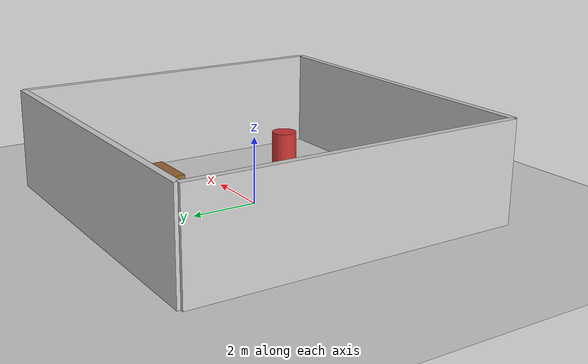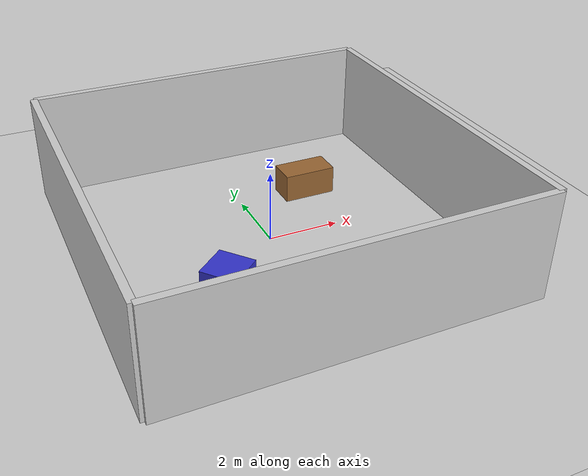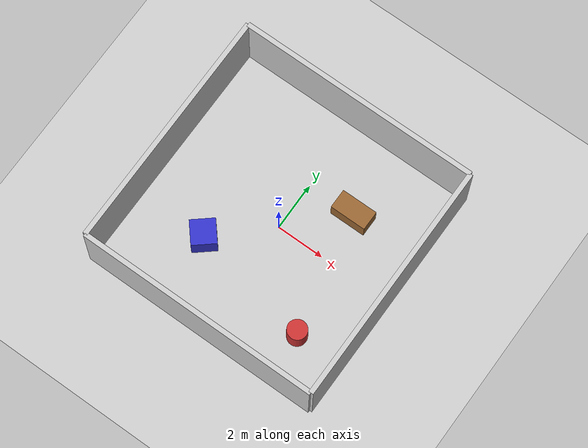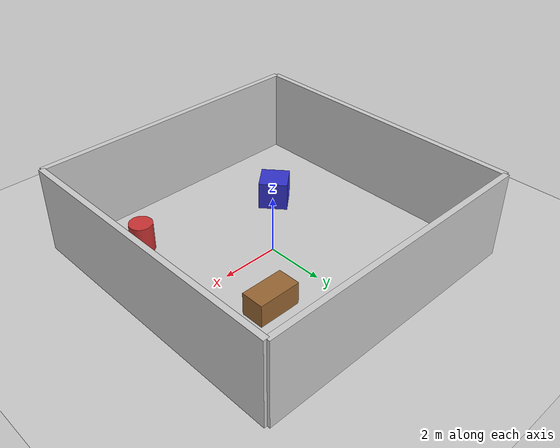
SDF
<?xml version="1.0" ?>
<sdf version="1.6">
  <world name="default">
    <include>
      <uri>model://sun</uri>
    </include>
    <include>
      <uri>model://ground_plane</uri>
    </include>

    <!-- Room walls -->
    <!-- Front wall -->
    <model name="wall_front">
      <static>true</static>
      <pose>5 0 1.5 0 0 0</pose>
      <link name="link">
        <collision name="collision">
          <geometry>
            <box>
              <size>0.2 10 3</size>
            </box>
          </geometry>
        </collision>
        <visual name="visual">
          <geometry>
            <box>
              <size>0.2 10 3</size>
            </box>
          </geometry>
          <material>
      <ambient>0.8 0.8 0.8 1</ambient>
            <diffuse>0.8 0.8 0.8 1</diffuse>
          </material>
        </visual>
      </link>
    </model>

    <!-- Back wall -->
    <model name="wall_back">
      <static>true</static>
      <pose>-5 0 1.5 0 0 0</pose>
      <link name="link">
        <collision name="collision">
          <geometry>
            <box>
              <size>0.2 10 3</size>
            </box>
          </geometry>
        </collision>
        <visual name="visual">
          <geometry>
            <box>
              <size>0.2 10 3</size>
            </box>
          </geometry>
          <material>
            <ambient>0.8 0.8 0.8 1</ambient>
            <diffuse>0.8 0.8 0.8 1</diffuse>
          </material>
        </visual>
      </link>
    </model>

    <!-- Left wall -->
    <model name="wall_left">
      <static>true</static>
      <pose>0 5 1.5 0 0 0</pose>
      <link name="link">
        <collision name="collision">
          <geometry>
            <box>
              <size>10 0.2 3</size>
            </box>
          </geometry>
        </collision>
        <visual name="visual">
          <geometry>
            <box>
              <size>10 0.2 3</size>
            </box>
          </geometry>
          <material>
            <ambient>0.8 0.8 0.8 1</ambient>
            <diffuse>0.8 0.8 0.8 1</diffuse>
          </material>
        </visual>
      </link>
    </model>

    <!-- Right wall -->
    <model name="wall_right">
      <static>true</static>
      <pose>0 -5 1.5 0 0 0</pose>
      <link name="link">
        <collision name="collision">
          <geometry>
            <box>
              <size>10 0.2 3</size>
            </box>
          </geometry>
        </collision>
        <visual name="visual">
          <geometry>
            <box>
              <size>10 0.2 3</size>
            </box>
          </geometry>
          <material>
            <ambient>0.8 0.8 0.8 1</ambient>
            <diffuse>0.8 0.8 0.8 1</diffuse>
          </material>
        </visual>
      </link>
    </model>

    <!-- Some furniture and objects -->
    <!-- Table -->
    <model name="table">
      <static>true</static>
      <pose>2 2 0.4 0 0 0</pose>
      <link name="link">
        <collision name="collision">
          <geometry>
            <box>
              <size>1.5 0.8 0.8</size>
            </box>
          </geometry>
        </collision>
        <visual name="visual">
          <geometry>
            <box>
              <size>1.5 0.8 0.8</size>
            </box>
          </geometry>
          <material>
            <ambient>0.6 0.4 0.2 1</ambient>
            <diffuse>0.6 0.4 0.2 1</diffuse>
          </material>
        </visual>
      </link>
    </model>

    <!-- Box -->
    <model name="box1">
      <static>true</static>
      <pose>-2 -2 0.5 0 0 0.7</pose>
      <link name="link">
        <collision name="collision">
          <geometry>
            <box>
              <size>1 1 1</size>
            </box>
          </geometry>
        </collision>
        <visual name="visual">
          <geometry>
            <box>
              <size>1 1 1</size>
            </box>
          </geometry>
          <material>
            <ambient>0.2 0.2 0.8 1</ambient>
            <diffuse>0.2 0.2 0.8 1</diffuse>
          </material>
        </visual>
      </link>
    </model>

    <!-- Cylinder -->
    <model name="cylinder1">
      <static>true</static>
      <pose>3 -3 0.5 0 0 0</pose>
      <link name="link">
        <collision name="collision">
          <geometry>
            <cylinder>
              <radius>0.4</radius>
              <length>1.0</length>
            </cylinder>
          </geometry>
        </collision>
        <visual name="visual">
          <geometry>
            <cylinder>
              <radius>0.4</radius>
              <length>1.0</length>
            </cylinder>
          </geometry>
          <material>
            <ambient>0.8 0.2 0.2 1</ambient>
            <diffuse>0.8 0.2 0.2 1</diffuse>
          </material>
        </visual>
      </link>
    </model>
  </world>
</sdf>
